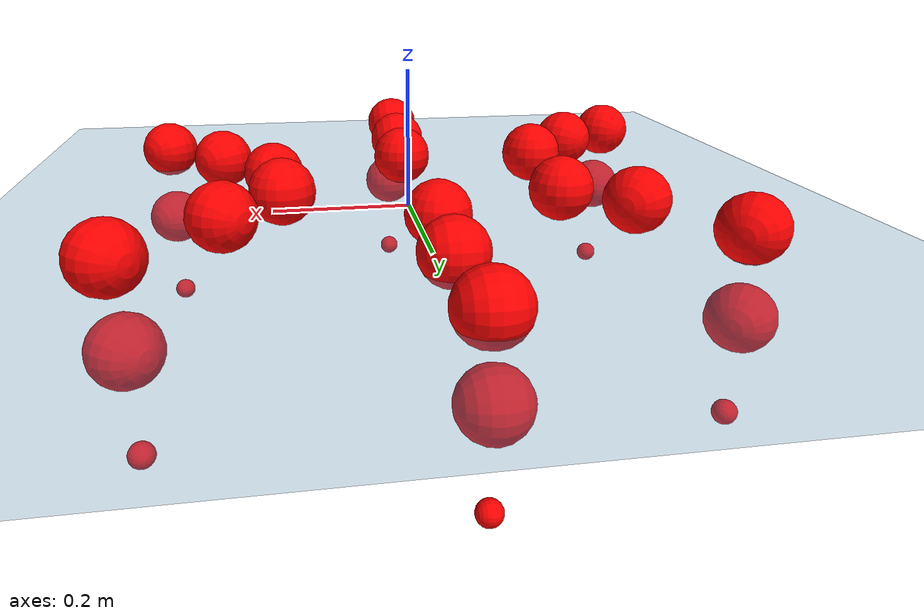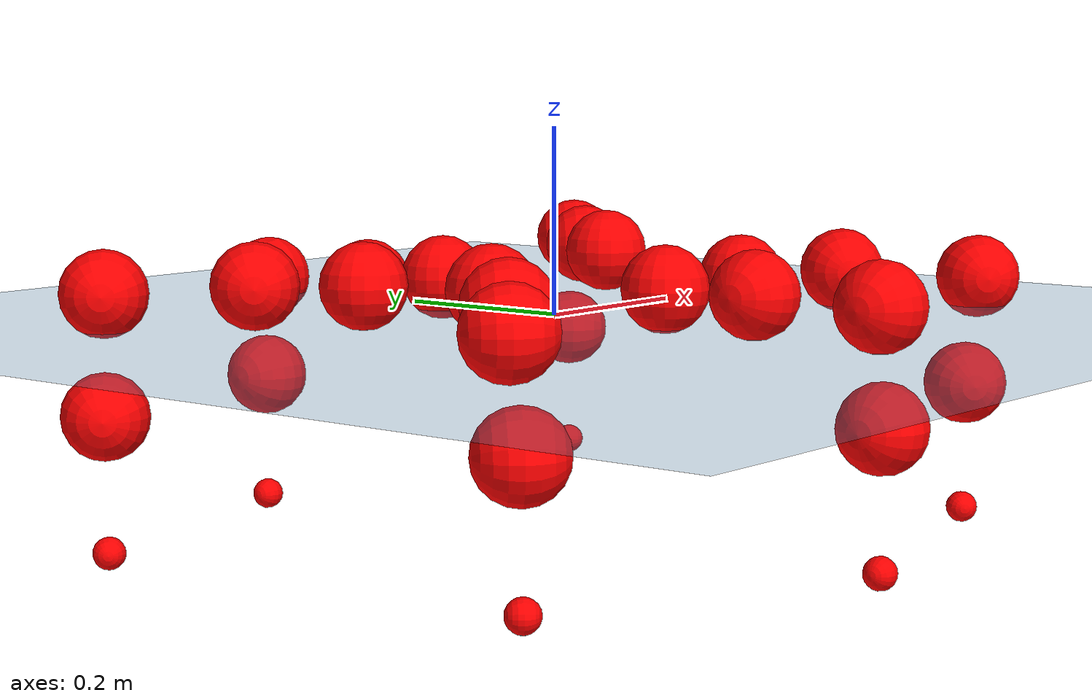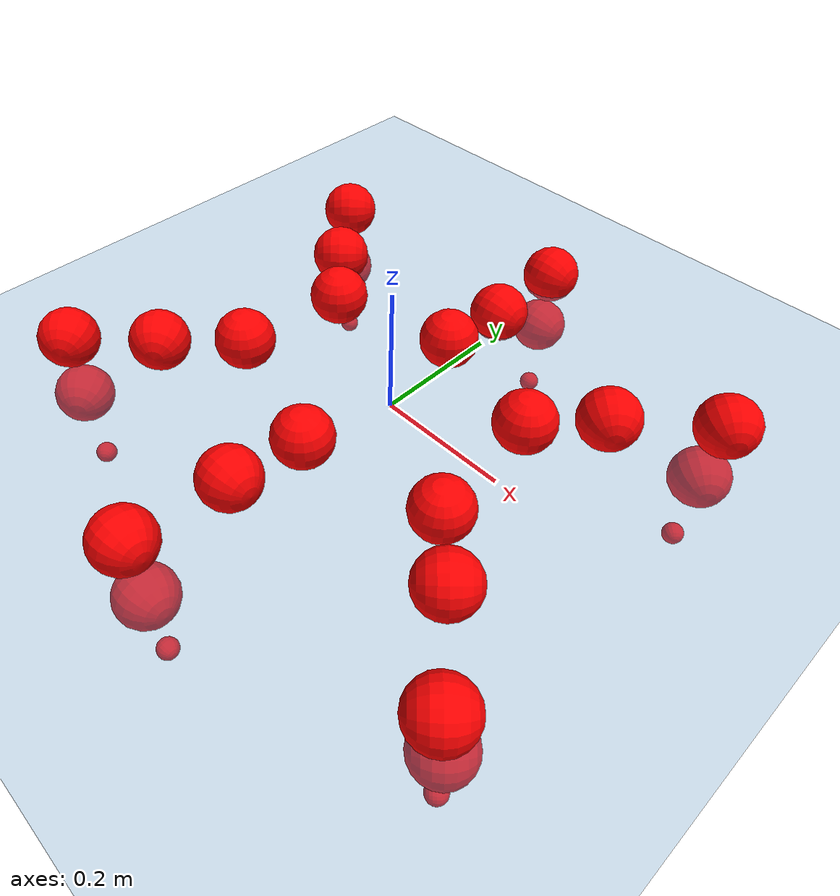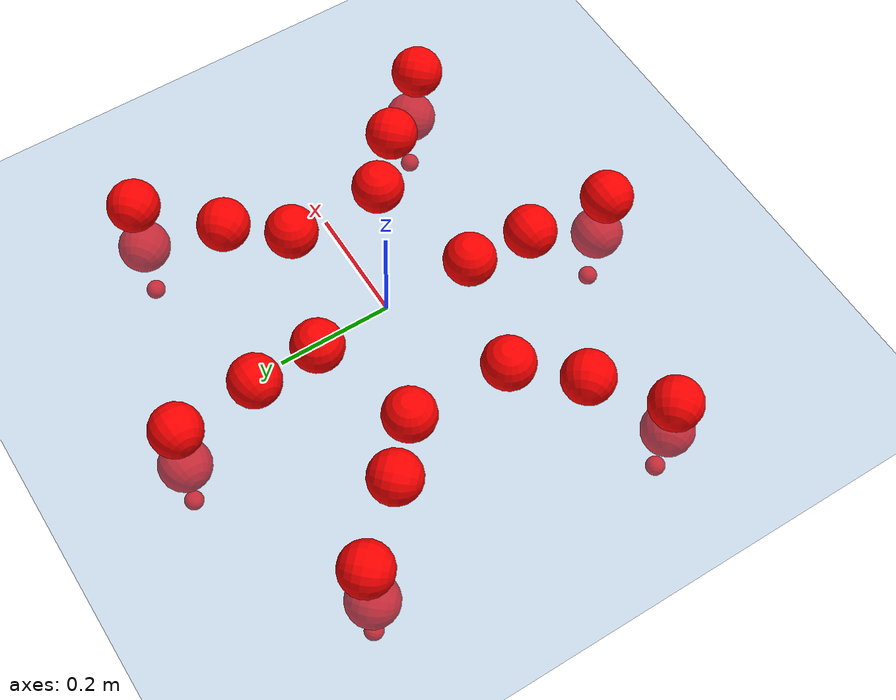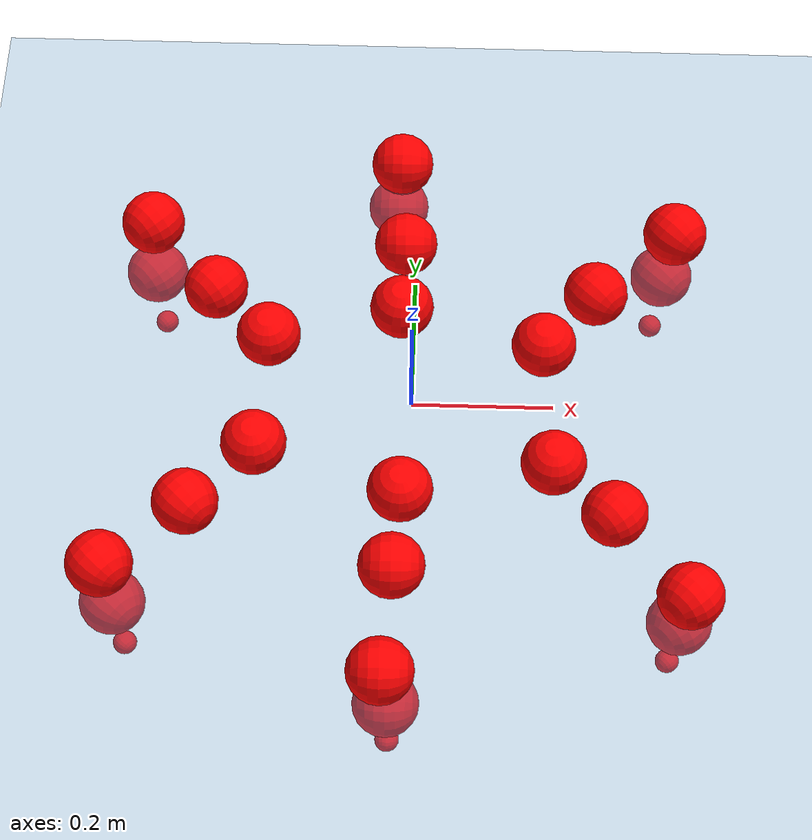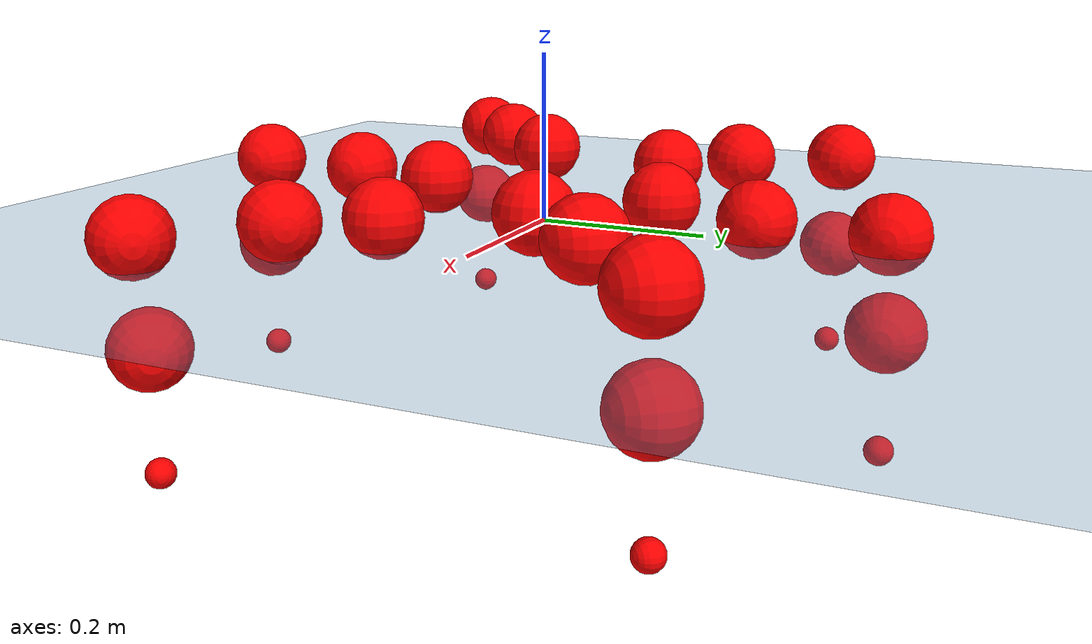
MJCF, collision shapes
<mujoco model="Golem">
  <compiler angle="radian" assetdir="assets" balanceinertia="true" inertiafromgeom="false"/>

  <option timestep="0.005" density="1.2" viscosity="2e-05"/>

  <size nkey="1"/>

  <visual>
    <quality shadowsize="8192"/>
    <map shadowclip="0.5"/>
  </visual>

  <default>
    <default class="/">
      <joint armature="0.01" damping="0.01" frictionloss="0.01"/>
      <geom contype="0" conaffinity="0" group="1" solref="-1000 -80"/>
      <site size="0.01 0.005 0.005" group="5"/>
      <general forcelimited="true" biastype="affine" gainprm="25" biasprm="0 -25 -0.5"/>
      <default class="visual">
        <geom type="mesh" group="2"/>
      </default>
      <default class="collision">
        <geom group="3"/>
      </default>
      <default class="foot">
        <geom size="0.01 0 0" condim="6" group="4" priority="1" solimp="0.015 1 0.01"/>
      </default>
      <default class="reward_collision_sphere">
        <geom group="5" rgba="1 0 0 1"/>
      </default>
    </default>
  </default>

  <asset>
    <texture type="skybox" colorspace="auto" name="//unnamed_texture_0" builtin="gradient" rgb1="0.95 0.95 0.95" rgb2="0.95 0.95 0.95" width="100" height="600"/>
    <texture type="2d" colorspace="auto" name="texplane" builtin="checker" rgb1="0.345 0.575 0.748" rgb2="0.345 0.575 0.748" markrgb="1 1 1" width="512" height="512"/>
    <material name="MatPlane" class="/" texture="texplane" texuniform="true" texrepeat="2 2" specular="0.9"/>
    <mesh name="body" class="/" file="body.stl" scale="0.001 0.001 0.001"/>
    <mesh name="coxa" class="/" file="coxa.stl" scale="0.001 0.001 0.001"/>
    <mesh name="femur" class="/" file="femur.stl" scale="0.001 0.001 0.001"/>
    <mesh name="tibia" class="/" file="tibia.stl" scale="0.001 0.001 0.001"/>
    <mesh name="tarsus" class="/" file="tarsus.stl" scale="0.001 0.001 0.001"/>
  </asset>

  <worldbody>
    <geom name="floor" class="/" size="100 100 0.125" type="plane" group="0" material="MatPlane"/>
    <light name="toplight_shadow" class="/" pos="0 0 5" dir="0.0990148 0.0990148 -0.990148" type="directional" ambient="0.04 0.04 0.04" diffuse="0.55 0.55 0.55" specular="0.12 0.12 0.12"/>
    <light name="toplight_fill" class="/" pos="0 0 5" dir="0.0990148 0.0990148 -0.990148" type="directional" castshadow="false" ambient="0.04 0.04 0.04" diffuse="0.3 0.3 0.3" specular="0.08 0.08 0.08"/>
    <body name="trunk" pos="-0.0103018 -0.00524 -0.00458249" quat="1 -9.58264e-05 0.000133069 7.92051e-05">
      <inertial pos="-0.00119264 -7.85181e-05 -0.00397059" quat="0.999961 -0.00293459 0.000828076 -0.00825703" mass="5.76893" diaginertia="0.0466043 0.0573078 0.00184537"/>
      <joint name="//unnamed_joint_0" type="free"/>
      <geom name="//unnamed_geom_1" class="/" pos="0 0 0.045638" quat="1 0 0 0" type="mesh" rgba="0.9 0.9 0.9 1" mesh="body"/>
      <site name="imu" class="/" pos="0.123811 -0.0448018 0.0635299" size="0.0114292"/>
      <camera name="track" class="/" pos="0 -2.80227 0" quat="0.707107 0.707107 0 0" mode="trackcom"/>
      <camera name="ego_camera" class="/" pos="0.170888 0 0.0713093" quat="-0.5 -0.5 0.5 0.5"/>
      <body name="coxa_RR" pos="-0.232863 -0.117151 0.0559455" quat="0.382523 -4.27141e-05 -2.39642e-05 -0.923946">
        <inertial pos="-0.00153936 0.0110058 0.00354189" quat="0.999447 -0.0264478 -0.0192293 0.00595563" mass="0.33878" diaginertia="0.0423202 0.0583842 0.0020073"/>
        <joint name="coxa_joint_RR" class="/" pos="0 0 0" axis="0.0165811 0.00551978 -0.999847" stiffness="0.0468302" range="-3.14955 3.15189" armature="0.0157893" damping="0.0174593" frictionloss="0.0116542"/>
        <geom name="//unnamed_geom_2" class="/" type="mesh" rgba="0.2 0.2 0.2 1" mesh="coxa"/>
        <geom name="//unnamed_geom_3" class="reward_collision_sphere" size="0.0457167" pos="-0.0394358 0 0"/>
        <body name="femur_RR" pos="0.0877598 0.00435663 -0.000778082" quat="0.500386 -0.499535 0.499985 0.500094">
          <inertial pos="0.00391209 0.00269136 -0.00165368" quat="0.999964 -0.000616899 0.0070712 0.00474914" mass="0.304177" diaginertia="0.0396891 0.053973 0.00159955"/>
          <joint name="femur_joint_RR" class="/" pos="0 0 0" axis="0.00478407 -0.00404619 -0.99998" stiffness="0.0475202" range="-2.96274 3.2684" armature="0.0120696" damping="0.00117422" frictionloss="0.0067184"/>
          <geom name="//unnamed_geom_4" class="/" type="mesh" rgba="0.9 0.9 0.9 1" mesh="femur"/>
          <geom name="//unnamed_geom_5" class="reward_collision_sphere" size="0.0457167"/>
          <body name="tibia_RR" pos="0.00706694 -0.141555 -0.0111752" quat="-0.00172175 0.999985 -0.00106876 0.00500912">
            <inertial pos="0.0088935 0.000100974 -0.00211716" quat="0.999961 -0.0056337 -0.00481517 -0.00484967" mass="0.288472" diaginertia="0.0412769 0.0585069 0.00210571"/>
            <joint name="tibia_joint_RR" class="/" pos="0 0 0" axis="0.0271599 -0.0339766 0.999054" range="-3.20912 3.02861" armature="0.0112771" damping="0.0211138" frictionloss="0.0113345"/>
            <geom name="//unnamed_geom_6" class="/" type="mesh" rgba="0.2 0.2 0.2 1" mesh="tibia"/>
            <geom name="//unnamed_geom_7" class="reward_collision_sphere" size="0.0457167"/>
            <body name="tarsus_RR" pos="0.108007 0.0017304 -0.00837687" quat="1 -6.64297e-05 -2.82813e-05 -0.000111235">
              <inertial pos="0.0702814 0.000847938 -0.00373076" quat="0.496414 0.503085 0.499326 0.50115" mass="0.298904" diaginertia="0.0394936 0.0526181 0.00185303"/>
              <joint name="tarsus_joint_RR" class="/" pos="0 0 0" axis="0.00531717 -0.00189561 0.999984" range="-2.96418 3.02147" armature="0.0121606" damping="0.0355408" frictionloss="0.0136718"/>
              <geom name="//unnamed_geom_8" class="/" type="mesh" rgba="0.9 0.9 0.9 1" mesh="tarsus"/>
              <geom name="foot_1" class="foot" size="0.011611" pos="0.147227 0 0" quat="0 -0.707107 0 0.707107"/>
              <geom name="//unnamed_geom_10" class="reward_collision_sphere" size="0.0457167"/>
              <geom name="//unnamed_geom_11" class="reward_collision_sphere" size="0.0171438" pos="0.141312 0 0"/>
              <site name="foot_1" class="foot" pos="0.147227 0 0" quat="0 -0.707107 0 0.707107" size="0.0114292"/>
            </body>
          </body>
        </body>
      </body>
      <body name="coxa_RM" pos="-0.00187944 -0.188876 0.0438249" quat="0.70791 -0.00260732 0.00031343 -0.706298">
        <inertial pos="-0.00687893 0.000388576 0.00370273" quat="0.999838 0.0166155 -0.00654489 0.00241299" mass="0.30991" diaginertia="0.0412709 0.0609645 0.00169436"/>
        <joint name="coxa_joint_RM" class="/" pos="0 0 0" axis="0.00196872 -0.00205759 -0.999996" range="-3.08744 3.13493" armature="0.0104379" damping="0.0428574" frictionloss="0.0183263"/>
        <geom name="//unnamed_geom_12" class="/" type="mesh" rgba="0.2 0.2 0.2 1" mesh="coxa"/>
        <geom name="//unnamed_geom_13" class="reward_collision_sphere" size="0.0457167" pos="-0.0394358 0 0"/>
        <body name="femur_RM" pos="0.0761458 -0.00831697 0.00219057" quat="0.500898 -0.496872 0.498701 0.503503">
          <inertial pos="-0.000719549 0.00302018 0.000430876" quat="0.999933 -0.00972939 -0.00497498 0.00382001" mass="0.251878" diaginertia="0.033765 0.0511881 0.00161878"/>
          <joint name="femur_joint_RM" class="/" pos="0 0 0" axis="-0.00535966 0.0259005 -0.99965" range="-3.11387 3.12768" armature="0.0136668" damping="0" frictionloss="0.0111341"/>
          <geom name="//unnamed_geom_14" class="/" type="mesh" rgba="0.9 0.9 0.9 1" mesh="femur"/>
          <geom name="//unnamed_geom_15" class="reward_collision_sphere" size="0.0457167"/>
          <body name="tibia_RM" pos="-0.000371719 -0.150687 -0.0108144" quat="0.000586774 1 0.000250226 0.000436178">
            <inertial pos="-0.0062333 0.0106758 0.00213606" quat="0.998954 -0.00561399 0.00733578 -0.0447764" mass="0.341968" diaginertia="0.0396157 0.0479218 0.00189338"/>
            <joint name="tibia_joint_RM" class="/" pos="0 0 0" axis="0.00358644 -0.00249911 0.99999" stiffness="0.000534146" range="-2.95612 2.89914" armature="0.0115624" damping="0.0178376" frictionloss="0.0110481"/>
            <geom name="//unnamed_geom_16" class="/" type="mesh" rgba="0.2 0.2 0.2 1" mesh="tibia"/>
            <geom name="//unnamed_geom_17" class="reward_collision_sphere" size="0.0457167"/>
            <body name="tarsus_RM" pos="0.117812 0.000306343 -0.0059277" quat="1 0.000379396 7.20022e-05 -6.73047e-06">
              <inertial pos="0.0787586 0.00612687 -0.00719048" quat="0.543387 0.495556 0.484639 0.473582" mass="0.259984" diaginertia="0.0437606 0.0577565 0.00202519"/>
              <joint name="tarsus_joint_RM" class="/" pos="0 0 0" axis="-0.00335026 -0.00264283 0.999991" stiffness="0.031375" range="-3.25437 3.16463" armature="0.00964538" damping="0" frictionloss="0.0105641"/>
              <geom name="//unnamed_geom_18" class="/" type="mesh" rgba="0.9 0.9 0.9 1" mesh="tarsus"/>
              <geom name="foot_2" class="foot" size="0.0109442" pos="0.147227 0 0" quat="0 -0.707107 0 0.707107"/>
              <geom name="//unnamed_geom_20" class="reward_collision_sphere" size="0.0457167"/>
              <geom name="//unnamed_geom_21" class="reward_collision_sphere" size="0.0171438" pos="0.141312 0 0"/>
              <site name="foot_2" class="foot" pos="0.147227 0 0" quat="0 -0.707107 0 0.707107" size="0.0114292"/>
            </body>
          </body>
        </body>
      </body>
      <body name="coxa_RF" pos="0.236116 -0.126947 0.0368768" quat="0.923469 0.000694354 0.000131532 -0.383671">
        <inertial pos="0.00183418 -0.00471319 0.00179493" quat="1 -0.000568765 0.000376991 -0.00047611" mass="0.302284" diaginertia="0.0391021 0.0525791 0.00192487"/>
        <joint name="coxa_joint_RF" class="/" pos="0 0 0" axis="-0.000582847 0.00173634 -0.999998" stiffness="0.00730735" range="-3.10183 3.12" armature="0.00661384" damping="0.0170723" frictionloss="0.0122947"/>
        <geom name="//unnamed_geom_22" class="/" type="mesh" rgba="0.2 0.2 0.2 1" mesh="coxa"/>
        <geom name="//unnamed_geom_23" class="reward_collision_sphere" size="0.0457167" pos="-0.0394358 0 0"/>
        <body name="femur_RF" pos="0.0737755 0.00257594 0.00554394" quat="0.49929 -0.500838 0.499568 0.500303">
          <inertial pos="-0.00303361 0.00584083 0.00194959" quat="0.999867 -0.00212171 -0.00385947 -0.0157205" mass="0.312308" diaginertia="0.0391632 0.0604547 0.00169914"/>
          <joint name="femur_joint_RF" class="/" pos="0 0 0" axis="-0.000805244 0.00165734 -0.999998" range="-2.92687 3.10288" armature="0.016752" damping="0.00128637" frictionloss="0.00714213"/>
          <geom name="//unnamed_geom_24" class="/" type="mesh" rgba="0.9 0.9 0.9 1" mesh="femur"/>
          <geom name="//unnamed_geom_25" class="reward_collision_sphere" size="0.0457167"/>
          <body name="tibia_RF" pos="0.00745667 -0.151588 -0.0112937" quat="0.000852965 0.999999 -0.00055819 8.5224e-05">
            <inertial pos="0.0110785 -0.00127687 0.000266906" quat="0.999996 -0.00159712 0.00185158 -0.00123985" mass="0.261117" diaginertia="0.0415986 0.0499177 0.00186981"/>
            <joint name="tibia_joint_RF" class="/" pos="0 0 0" axis="0.0276532 0.0456393 0.998575" range="-3.1189 3.35409" armature="0.0127339" damping="0.00899494" frictionloss="0.0117246"/>
            <geom name="//unnamed_geom_26" class="/" type="mesh" rgba="0.2 0.2 0.2 1" mesh="tibia"/>
            <geom name="//unnamed_geom_27" class="reward_collision_sphere" size="0.0457167"/>
            <body name="tarsus_RF" pos="0.120486 -0.00967942 -0.00850279" quat="0.999987 0.00386352 0.000236787 -0.00318121">
              <inertial pos="0.0779878 -0.000204106 0.00119536" quat="0.499641 0.495541 0.497705 0.507038" mass="0.294546" diaginertia="0.0393382 0.0542776 0.00172988"/>
              <joint name="tarsus_joint_RF" class="/" pos="0 0 0" axis="0.00744195 0.0265249 0.99962" stiffness="0.0156158" range="-3.08322 3.15759" armature="0.00856147" damping="0.000957367" frictionloss="0.0138444"/>
              <geom name="//unnamed_geom_28" class="/" type="mesh" rgba="0.9 0.9 0.9 1" mesh="tarsus"/>
              <geom name="foot_3" class="foot" size="0.00837528" pos="0.147227 0 0" quat="0 -0.707107 0 0.707107"/>
              <geom name="//unnamed_geom_30" class="reward_collision_sphere" size="0.0457167"/>
              <geom name="//unnamed_geom_31" class="reward_collision_sphere" size="0.0171438" pos="0.141312 0 0"/>
              <site name="foot_3" class="foot" pos="0.147227 0 0" quat="0 -0.707107 0 0.707107" size="0.0114292"/>
            </body>
          </body>
        </body>
      </body>
      <body name="coxa_LR" pos="-0.223153 0.1181 0.0470064" quat="0.382851 0.000331568 -0.000283399 0.92381">
        <inertial pos="0.00978631 -0.00422624 0.0116579" quat="0.998548 0.0524762 0.00599371 0.0106278" mass="0.294631" diaginertia="0.0366922 0.0420469 0.00164639"/>
        <joint name="coxa_joint_LR" class="/" pos="0 0 0" axis="-0.0126955 -0.0485762 -0.998739" range="-3.11214 3.22912" armature="0.0143619" damping="0.00902579" frictionloss="0.0158984"/>
        <geom name="//unnamed_geom_32" class="/" type="mesh" rgba="0.2 0.2 0.2 1" mesh="coxa"/>
        <geom name="//unnamed_geom_33" class="reward_collision_sphere" size="0.0457167" pos="-0.0394358 0 0"/>
        <body name="femur_LR" pos="0.0706668 0.00288401 0.00139833" quat="0.499887 -0.499951 0.500007 0.500155">
          <inertial pos="0.00265532 0.00126532 -0.00107181" quat="0.999715 0.0233234 0.0050215 -0.000984766" mass="0.298543" diaginertia="0.0408684 0.0497132 0.00185098"/>
          <joint name="femur_joint_LR" class="/" pos="0 0 0" axis="-0.0265486 -0.00105817 0.999647" range="-3.17101 3.10868" armature="0.0113125" damping="0.0129794" frictionloss="0.0178621"/>
          <geom name="//unnamed_geom_34" class="/" type="mesh" rgba="0.9 0.9 0.9 1" mesh="femur"/>
          <geom name="//unnamed_geom_35" class="reward_collision_sphere" size="0.0457167"/>
          <body name="tibia_LR" pos="0.0070409 -0.151863 -0.0088134" quat="0.00260485 0.999989 -0.00173763 0.00361133">
            <inertial pos="0.00133901 0.00167242 -0.000633336" quat="0.999999 0.00102467 -0.00106918 0.000131688" mass="0.276133" diaginertia="0.0379903 0.0521389 0.00172855"/>
            <joint name="tibia_joint_LR" class="/" pos="0 0 0" axis="0.0145146 -0.0197831 -0.999699" range="-3.05217 3.29406" armature="0.0107143" damping="0.00746049" frictionloss="0.0122511"/>
            <geom name="//unnamed_geom_36" class="/" type="mesh" rgba="0.2 0.2 0.2 1" mesh="tibia"/>
            <geom name="//unnamed_geom_37" class="reward_collision_sphere" size="0.0457167"/>
            <body name="tarsus_LR" pos="0.124513 -5.51829e-05 -0.00759047" quat="0.999987 -0.000946971 -0.00308662 -0.00386219">
              <inertial pos="0.0676627 0.00055051 0.0109841" quat="0.497969 0.49642 0.50083 0.504742" mass="0.312653" diaginertia="0.0388923 0.0572511 0.00176753"/>
              <joint name="tarsus_joint_LR" class="/" pos="0 0 0" axis="-0.0274467 0.0365813 -0.998954" range="-2.97221 3.30643" armature="0.0121006" damping="0.0205513" frictionloss="0.0101139"/>
              <geom name="//unnamed_geom_38" class="/" type="mesh" rgba="0.9 0.9 0.9 1" mesh="tarsus"/>
              <geom name="foot_4" class="foot" size="0.00923315" pos="0.147227 0 0" quat="0.707107 0 -0.707107 0"/>
              <geom name="//unnamed_geom_40" class="reward_collision_sphere" size="0.0457167"/>
              <geom name="//unnamed_geom_41" class="reward_collision_sphere" size="0.0171438" pos="0.141312 0 0"/>
              <site name="foot_4" class="foot" pos="0.147227 0 0" quat="0.707107 0 -0.707107 0" size="0.0114292"/>
            </body>
          </body>
        </body>
      </body>
      <body name="coxa_LM" pos="-0.00759607 0.186728 0.0373229" quat="0.70819 -0.000912922 0.000513227 0.706021">
        <inertial pos="-0.00101499 0.00226993 0.00464232" quat="0.999569 -0.0278188 0.00931684 0.00126696" mass="0.306284" diaginertia="0.0427722 0.05616 0.00189821"/>
        <joint name="coxa_joint_LM" class="/" pos="0 0 0" axis="0.00246659 0.00045338 -0.999997" stiffness="0.028211" range="-3.30501 3.17317" armature="0.00937294" damping="0" frictionloss="0.00700315"/>
        <geom name="//unnamed_geom_42" class="/" type="mesh" rgba="0.2 0.2 0.2 1" mesh="coxa"/>
        <geom name="//unnamed_geom_43" class="reward_collision_sphere" size="0.0457167" pos="-0.0394358 0 0"/>
        <body name="femur_LM" pos="0.07593 -0.00244316 -0.01069" quat="0.497396 -0.501763 0.499699 0.501131">
          <inertial pos="-0.00391425 0.00836896 -0.0114639" quat="0.998694 0.0386566 0.00864221 0.0322744" mass="0.29298" diaginertia="0.0365116 0.0611172 0.00175585"/>
          <joint name="femur_joint_LM" class="/" pos="0 0 0" axis="0.028232 -0.00551977 0.999586" range="-3.13589 3.29684" armature="0.00879381" damping="0.0141426" frictionloss="0.0120116"/>
          <geom name="//unnamed_geom_44" class="/" type="mesh" rgba="0.9 0.9 0.9 1" mesh="femur"/>
          <geom name="//unnamed_geom_45" class="reward_collision_sphere" size="0.0457167"/>
          <body name="tibia_LM" pos="0.00429069 -0.147446 0.00874473" quat="0.00246923 0.999983 -0.00442703 0.00270361">
            <inertial pos="-0.000776133 0.0120234 -0.00188062" quat="0.999544 -0.0191455 -0.0219 0.00805665" mass="0.308029" diaginertia="0.0382415 0.0478034 0.00179728"/>
            <joint name="tibia_joint_LM" class="/" pos="0 0 0" axis="-0.00379737 0.0187234 -0.999817" stiffness="0.0107336" range="-3.11366 3.10286" armature="0.006544" damping="0.0593757" frictionloss="0.014026"/>
            <geom name="//unnamed_geom_46" class="/" type="mesh" rgba="0.2 0.2 0.2 1" mesh="tibia"/>
            <geom name="//unnamed_geom_47" class="reward_collision_sphere" size="0.0457167"/>
            <body name="tarsus_LM" pos="0.11429 0.000903247 -0.0056553" quat="0.999982 -0.00491091 -0.00265955 0.00222917">
              <inertial pos="0.0853382 -0.00159756 0.00455074" quat="0.499732 0.499327 0.501185 0.499754" mass="0.314181" diaginertia="0.0464243 0.0620349 0.00192032"/>
              <joint name="tarsus_joint_LM" class="/" pos="0 0 0" axis="-0.000189847 -9.58993e-05 -1" stiffness="0.0212802" range="-3.36702 3.1199" armature="0.00611161" damping="0.0660317" frictionloss="0.00975159"/>
              <geom name="//unnamed_geom_48" class="/" type="mesh" rgba="0.9 0.9 0.9 1" mesh="tarsus"/>
              <geom name="foot_5" class="foot" size="0.0103434" pos="0.147227 0 0" quat="0.707107 0 -0.707107 0"/>
              <geom name="//unnamed_geom_50" class="reward_collision_sphere" size="0.0457167"/>
              <geom name="//unnamed_geom_51" class="reward_collision_sphere" size="0.0171438" pos="0.141312 0 0"/>
              <site name="foot_5" class="foot" pos="0.147227 0 0" quat="0.707107 0 -0.707107 0" size="0.0114292"/>
            </body>
          </body>
        </body>
      </body>
      <body name="coxa_LF" pos="0.222406 0.106115 0.0562412" quat="0.923846 0.000788825 0.000108536 0.382763">
        <inertial pos="-0.000771821 0.0010779 0.00287581" quat="0.999481 0.00921923 -0.0307575 -0.00249802" mass="0.35941" diaginertia="0.0453369 0.0623189 0.00207269"/>
        <joint name="coxa_joint_LF" class="/" pos="0 0 0" axis="-0.000478791 -0.00110118 -0.999999" stiffness="0.0201816" range="-3.06998 2.91321" armature="0.00663272" damping="0.0675712" frictionloss="0.0149718"/>
        <geom name="//unnamed_geom_52" class="/" type="mesh" rgba="0.2 0.2 0.2 1" mesh="coxa"/>
        <geom name="//unnamed_geom_53" class="reward_collision_sphere" size="0.0457167" pos="-0.0394358 0 0"/>
        <body name="femur_LF" pos="0.0761176 0.0102442 -0.00309208" quat="0.502351 -0.496951 0.498256 0.502418">
          <inertial pos="-0.0110721 -0.000111875 0.00138095" quat="0.999983 0.000484206 -0.0032481 -0.00479423" mass="0.303858" diaginertia="0.0399725 0.0538293 0.00201305"/>
          <joint name="femur_joint_LF" class="/" pos="0 0 0" axis="-0.000391647 0.00492617 0.999988" range="-3.25238 3.13645" armature="0.00661841" damping="0" frictionloss="0.0119785"/>
          <geom name="//unnamed_geom_54" class="/" type="mesh" rgba="0.9 0.9 0.9 1" mesh="femur"/>
          <geom name="//unnamed_geom_55" class="reward_collision_sphere" size="0.0457167"/>
          <body name="tibia_LF" pos="0.00475221 -0.160828 -0.00550367" quat="-0.000538553 1 -0.000185556 0.000221611">
            <inertial pos="0.000887407 -0.00705621 -0.00337787" quat="0.999976 0.00452109 -0.00501633 -0.00166174" mass="0.313079" diaginertia="0.0400362 0.0550067 0.00185656"/>
            <joint name="tibia_joint_LF" class="/" pos="0 0 0" axis="-0.000450097 0.00129724 -0.999999" stiffness="0.027573" range="-3.12877 3.16562" armature="0.0148926" damping="0.0390245" frictionloss="0.00901304"/>
            <geom name="//unnamed_geom_56" class="/" type="mesh" rgba="0.2 0.2 0.2 1" mesh="tibia"/>
            <geom name="//unnamed_geom_57" class="reward_collision_sphere" size="0.0457167"/>
            <body name="tarsus_LF" pos="0.114362 -0.00460645 -0.00449849" quat="0.999987 0.00175675 -0.00288824 -0.00389419">
              <inertial pos="0.0784043 0.00242385 0.00399871" quat="0.52643 0.482097 0.502211 0.488096" mass="0.276642" diaginertia="0.0392716 0.0479105 0.0017185"/>
              <joint name="tarsus_joint_LF" class="/" pos="0 0 0" axis="0.0119304 -0.0162484 -0.999797" range="-2.99058 3.05969" armature="0.0119212" damping="0.0642025" frictionloss="0.0106037"/>
              <geom name="//unnamed_geom_58" class="/" type="mesh" rgba="0.9 0.9 0.9 1" mesh="tarsus"/>
              <geom name="foot_6" class="foot" size="0.0105509" pos="0.147227 0 0" quat="0.707107 0 -0.707107 0"/>
              <geom name="//unnamed_geom_60" class="reward_collision_sphere" size="0.0457167"/>
              <geom name="//unnamed_geom_61" class="reward_collision_sphere" size="0.0171438" pos="0.141312 0 0"/>
              <site name="foot_6" class="foot" pos="0.147227 0 0" quat="0.707107 0 -0.707107 0" size="0.0114292"/>
            </body>
          </body>
        </body>
      </body>
    </body>
  </worldbody>

  <contact>
    <pair class="/" geom1="floor" geom2="foot_1" name="//unnamed_contact_0"/>
    <pair class="/" geom1="floor" geom2="foot_2" name="//unnamed_contact_1"/>
    <pair class="/" geom1="floor" geom2="foot_3" name="//unnamed_contact_2"/>
    <pair class="/" geom1="floor" geom2="foot_4" name="//unnamed_contact_3"/>
    <pair class="/" geom1="floor" geom2="foot_5" name="//unnamed_contact_4"/>
    <pair class="/" geom1="floor" geom2="foot_6" name="//unnamed_contact_5"/>
  </contact>

  <actuator>
    <general name="coxa_joint_RR" class="/" joint="coxa_joint_RR" forcerange="-8.69829 8.69829" gainprm="26.7602" biasprm="0 -26.7602 -0.549954"/>
    <general name="femur_joint_RR" class="/" joint="femur_joint_RR" forcerange="-8.35738 8.35738" gainprm="26.7602" biasprm="0 -26.7602 -0.549954"/>
    <general name="tibia_joint_RR" class="/" joint="tibia_joint_RR" forcerange="-8.76016 8.76016" gainprm="26.7602" biasprm="0 -26.7602 -0.549954"/>
    <general name="tarsus_joint_RR" class="/" joint="tarsus_joint_RR" forcerange="-6.06445 6.06445" gainprm="26.7602" biasprm="0 -26.7602 -0.549954"/>
    <general name="coxa_joint_RM" class="/" joint="coxa_joint_RM" forcerange="-11.713 11.713" gainprm="26.7602" biasprm="0 -26.7602 -0.549954"/>
    <general name="femur_joint_RM" class="/" joint="femur_joint_RM" forcerange="-8.42133 8.42133" gainprm="26.7602" biasprm="0 -26.7602 -0.549954"/>
    <general name="tibia_joint_RM" class="/" joint="tibia_joint_RM" forcerange="-10.0786 10.0786" gainprm="26.7602" biasprm="0 -26.7602 -0.549954"/>
    <general name="tarsus_joint_RM" class="/" joint="tarsus_joint_RM" forcerange="-8.72518 8.72518" gainprm="26.7602" biasprm="0 -26.7602 -0.549954"/>
    <general name="coxa_joint_RF" class="/" joint="coxa_joint_RF" forcerange="-11.4537 11.4537" gainprm="26.7602" biasprm="0 -26.7602 -0.549954"/>
    <general name="femur_joint_RF" class="/" joint="femur_joint_RF" forcerange="-9.82852 9.82852" gainprm="26.7602" biasprm="0 -26.7602 -0.549954"/>
    <general name="tibia_joint_RF" class="/" joint="tibia_joint_RF" forcerange="-11.8822 11.8822" gainprm="26.7602" biasprm="0 -26.7602 -0.549954"/>
    <general name="tarsus_joint_RF" class="/" joint="tarsus_joint_RF" forcerange="-6.97733 6.97733" gainprm="26.7602" biasprm="0 -26.7602 -0.549954"/>
    <general name="coxa_joint_LR" class="/" joint="coxa_joint_LR" forcerange="-8.20446 8.20446" gainprm="26.7602" biasprm="0 -26.7602 -0.549954"/>
    <general name="femur_joint_LR" class="/" joint="femur_joint_LR" forcerange="-8.87743 8.87743" gainprm="26.7602" biasprm="0 -26.7602 -0.549954"/>
    <general name="tibia_joint_LR" class="/" joint="tibia_joint_LR" forcerange="-7.80537 7.80537" gainprm="26.7602" biasprm="0 -26.7602 -0.549954"/>
    <general name="tarsus_joint_LR" class="/" joint="tarsus_joint_LR" forcerange="-7.60535 7.60535" gainprm="26.7602" biasprm="0 -26.7602 -0.549954"/>
    <general name="coxa_joint_LM" class="/" joint="coxa_joint_LM" forcerange="-5.7931 5.7931" gainprm="26.7602" biasprm="0 -26.7602 -0.549954"/>
    <general name="femur_joint_LM" class="/" joint="femur_joint_LM" forcerange="-8.19234 8.19234" gainprm="26.7602" biasprm="0 -26.7602 -0.549954"/>
    <general name="tibia_joint_LM" class="/" joint="tibia_joint_LM" forcerange="-7.94591 7.94591" gainprm="26.7602" biasprm="0 -26.7602 -0.549954"/>
    <general name="tarsus_joint_LM" class="/" joint="tarsus_joint_LM" forcerange="-8.87519 8.87519" gainprm="26.7602" biasprm="0 -26.7602 -0.549954"/>
    <general name="coxa_joint_LF" class="/" joint="coxa_joint_LF" forcerange="-11.9808 11.9808" gainprm="26.7602" biasprm="0 -26.7602 -0.549954"/>
    <general name="femur_joint_LF" class="/" joint="femur_joint_LF" forcerange="-8.8865 8.8865" gainprm="26.7602" biasprm="0 -26.7602 -0.549954"/>
    <general name="tibia_joint_LF" class="/" joint="tibia_joint_LF" forcerange="-8.17053 8.17053" gainprm="26.7602" biasprm="0 -26.7602 -0.549954"/>
    <general name="tarsus_joint_LF" class="/" joint="tarsus_joint_LF" forcerange="-9.84658 9.84658" gainprm="26.7602" biasprm="0 -26.7602 -0.549954"/>
  </actuator>

  <sensor>
    <gyro site="imu" name="imu_angular_velocity"/>
    <velocimeter site="imu" name="imu_linear_velocity"/>
    <framelinvel objtype="site" objname="foot_1" name="foot_1_global_linear_velocity"/>
    <framelinvel objtype="site" objname="foot_2" name="foot_2_global_linear_velocity"/>
    <framelinvel objtype="site" objname="foot_3" name="foot_3_global_linear_velocity"/>
    <framelinvel objtype="site" objname="foot_4" name="foot_4_global_linear_velocity"/>
    <framelinvel objtype="site" objname="foot_5" name="foot_5_global_linear_velocity"/>
    <framelinvel objtype="site" objname="foot_6" name="foot_6_global_linear_velocity"/>
  </sensor>

  <keyframe>
    <key name="home" qpos="0 0 0.1457 1 0 0 0 0 0 0 0 0 0 0 0 0 0 0 0 0 0 0 0 0 0 0 0 0 0 0 0"/>
  </keyframe>
</mujoco>
